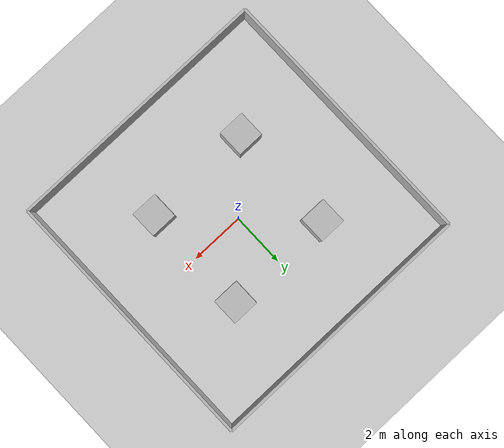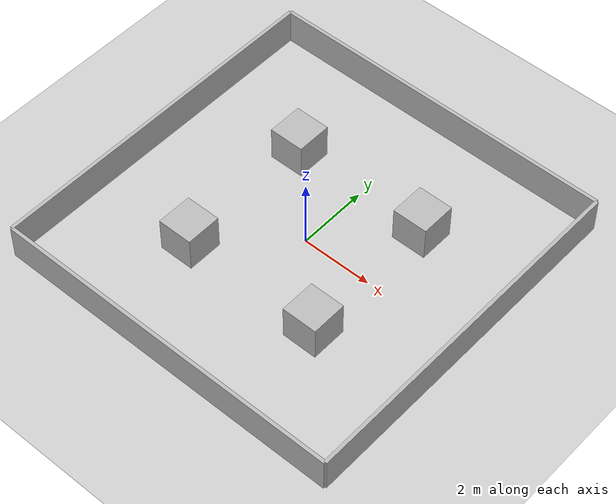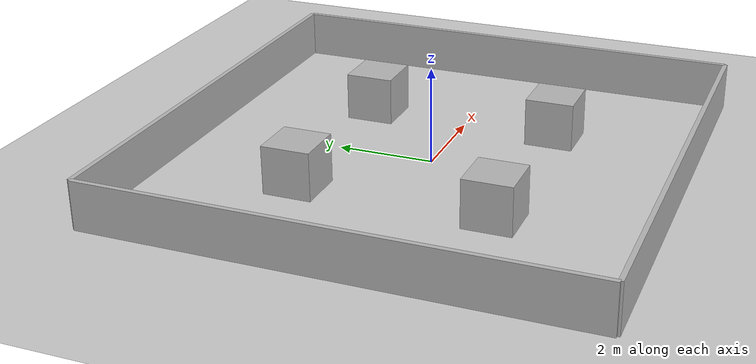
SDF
<?xml version="1.0" ?>
<sdf version="1.6">
  <world name="classroom">
    <physics name="1ms" type="ignored">
      <max_step_size>0.001</max_step_size>
      <real_time_factor>1.0</real_time_factor>
    </physics>

    <light type="directional" name="sun">
      <cast_shadows>true</cast_shadows>
      <pose>0 0 10 0 0 0</pose>
      <diffuse>0.8 0.8 0.8 1</diffuse>
      <specular>0.2 0.2 0.2 1</specular>
    </light>

    <model name="ground_plane">
      <static>true</static>
      <link name="link">
        <collision name="collision">
          <geometry><plane><normal>0 0 1</normal></plane></geometry>
        </collision>
        <visual name="visual">
          <geometry><plane><normal>0 0 1</normal></plane></geometry>
          <material><ambient>0.8 0.8 0.8 1</ambient></material>
        </visual>
      </link>
    </model>

    <model name="wall_north"><static>true</static><pose>5 0 0.5 0 0 1.57</pose><link name="l"><visual name="v"><geometry><box><size>10 0.1 1</size></box></geometry></visual><collision name="c"><geometry><box><size>10 0.1 1</size></box></geometry></collision></link></model>
    <model name="wall_south"><static>true</static><pose>-5 0 0.5 0 0 1.57</pose><link name="l"><visual name="v"><geometry><box><size>10 0.1 1</size></box></geometry></visual><collision name="c"><geometry><box><size>10 0.1 1</size></box></geometry></collision></link></model>
    <model name="wall_east"><static>true</static><pose>0 5 0.5 0 0 0</pose><link name="l"><visual name="v"><geometry><box><size>10 0.1 1</size></box></geometry></visual><collision name="c"><geometry><box><size>10 0.1 1</size></box></geometry></collision></link></model>
    <model name="wall_west"><static>true</static><pose>0 -5 0.5 0 0 0</pose><link name="l"><visual name="v"><geometry><box><size>10 0.1 1</size></box></geometry></visual><collision name="c"><geometry><box><size>10 0.1 1</size></box></geometry></collision></link></model>

    <model name="desk1"><static>true</static><pose>2 2 0.5 0 0 0</pose><link name="l"><visual name="v"><geometry><box><size>1 1 1</size></box></geometry></visual><collision name="c"><geometry><box><size>1 1 1</size></box></geometry></collision></link></model>
    <model name="desk2"><static>true</static><pose>-2 2 0.5 0 0 0</pose><link name="l"><visual name="v"><geometry><box><size>1 1 1</size></box></geometry></visual><collision name="c"><geometry><box><size>1 1 1</size></box></geometry></collision></link></model>
    <model name="desk3"><static>true</static><pose>2 -2 0.5 0 0 0</pose><link name="l"><visual name="v"><geometry><box><size>1 1 1</size></box></geometry></visual><collision name="c"><geometry><box><size>1 1 1</size></box></geometry></collision></link></model>
    <model name="desk4"><static>true</static><pose>-2 -2 0.5 0 0 0</pose><link name="l"><visual name="v"><geometry><box><size>1 1 1</size></box></geometry></visual><collision name="c"><geometry><box><size>1 1 1</size></box></geometry></collision></link></model>

  </world>
</sdf>
